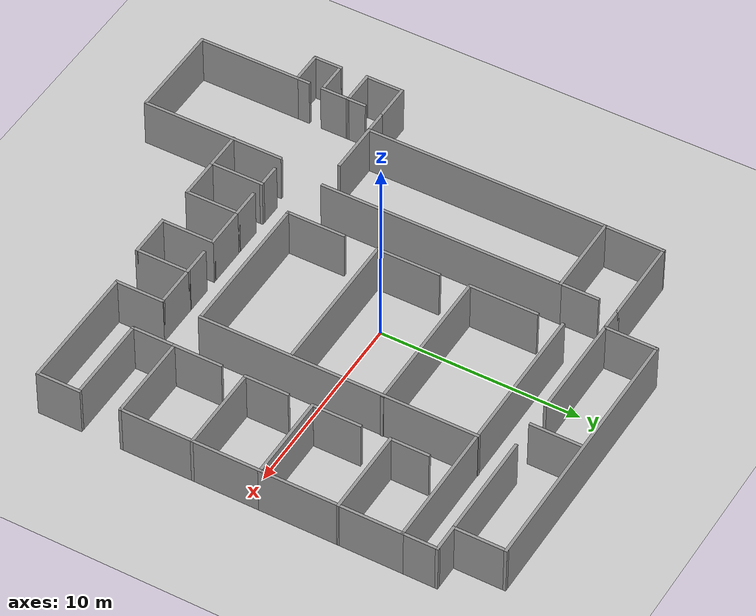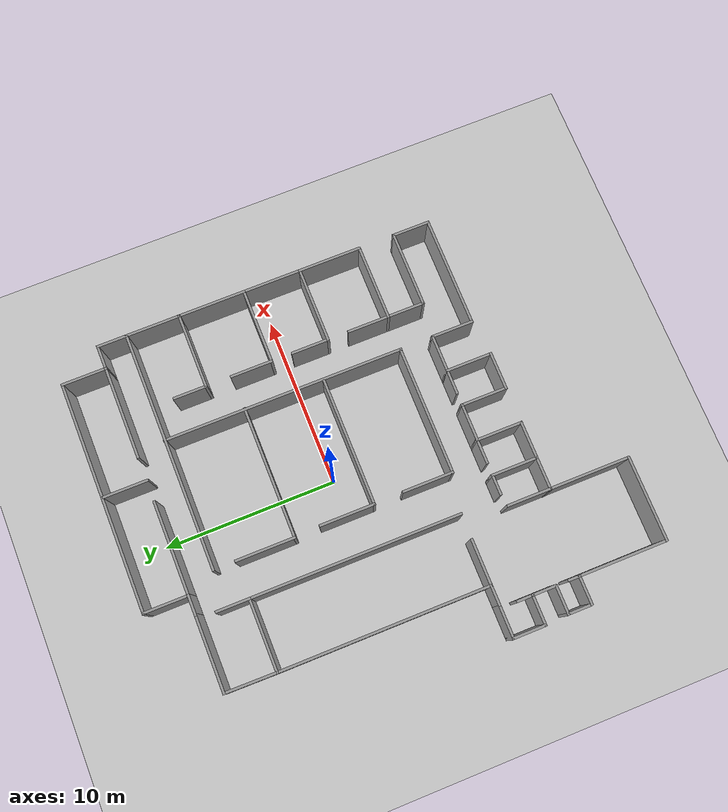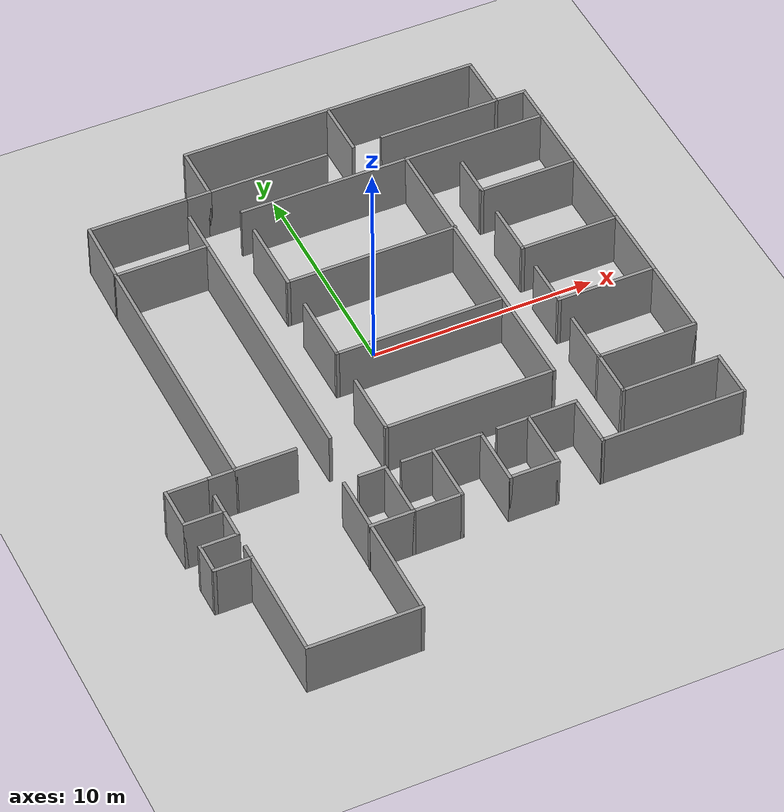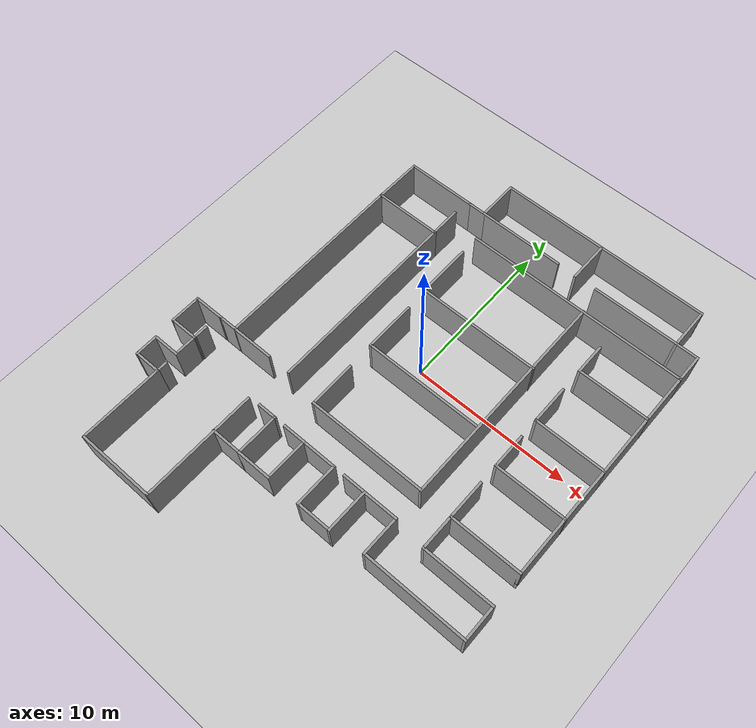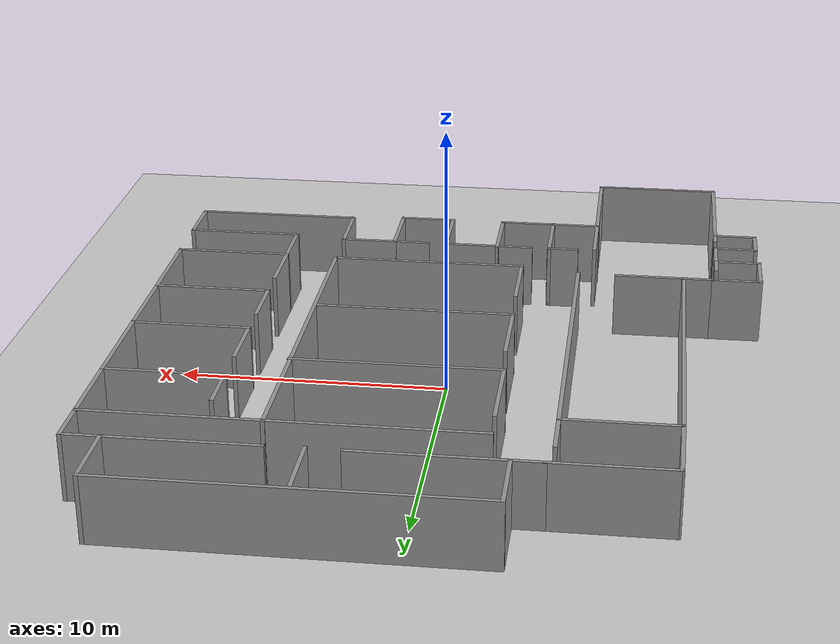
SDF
<sdf version="1.6">
 <world name="default">
  <light name="sun" type="directional">
   <pose>0 0 10 0 -0 0</pose>
   <diffuse>0.8 0.8 0.8 1</diffuse>
   <specular>0.2 0.2 0.2 1</specular>
   <attenuation>
    <range>1000</range>
    <constant>0.9</constant>
    <linear>0.01</linear>
    <quadratic>0.001</quadratic>
   </attenuation>
   <direction>-0.5 0.1 -0.9</direction>
  </light>
  <model name="ground_plane">
   <static>1</static>
   <link name="link">
    <collision name="collision">
     <geometry><plane><normal>0 0 1</normal><size>100 100</size></plane></geometry>
     <surface>
      <contact><collide_bitmask>65535</collide_bitmask></contact>
      <friction><ode><mu>100</mu><mu2>50</mu2></ode></friction>
     </surface>
    </collision>
    <visual name="visual">
     <cast_shadows>0</cast_shadows>
     <geometry><plane><normal>0 0 1</normal><size>100 100</size></plane></geometry>
     <material>
      <script><uri>file://media/materials/scripts/gazebo.material</uri><name>Gazebo/Grey</name></script>
     </material>
    </visual>
   </link>
  </model>
  <gravity>0 0 -9.8</gravity>
  <magnetic_field>6e-06 2.3e-05 -4.2e-05</magnetic_field>
  <atmosphere type="adiabatic"/>
  <physics name="default_physics" default="0" type="ode">
   <max_step_size>0.001</max_step_size>
   <real_time_factor>1</real_time_factor>
   <real_time_update_rate>1000</real_time_update_rate>
  </physics>
  <scene><ambient>0.4 0.4 0.4 1</ambient><background>0.7 0.7 0.7 1</background><shadows>1</shadows></scene>
  <audio><device>default</device></audio>
  <spherical_coordinates>
   <surface_model>EARTH_WGS84</surface_model>
   <latitude_deg>0</latitude_deg>
   <longitude_deg>0</longitude_deg>
   <elevation>0</elevation>
   <heading_deg>0</heading_deg>
  </spherical_coordinates>
  <model name="444.world">
   <pose>-0.029939 -1.64319 0 0 -0 0</pose>
   <link name="Wall_10">
    <collision name="Wall_10_Collision">
     <geometry><box><size>4.9997 0.15 2.5</size></box></geometry>
     <pose>0 0 1.25 0 -0 0</pose>
    </collision>
    <visual name="Wall_10_Visual">
     <pose>0 0 1.25 0 -0 0</pose>
     <geometry><box><size>4.9997 0.15 2.5</size></box></geometry>
     <material>
      <script><uri>file://media/materials/scripts/gazebo.material</uri><name>Gazebo/Grey</name></script>
      <ambient>1 1 1 1</ambient>
     </material>
     <meta><layer>0</layer></meta>
    </visual>
    <pose>-7.44921 -13.5901 0 0 -0 -3e-05</pose>
   </link>
   <link name="Wall_101">
    <collision name="Wall_101_Collision">
     <geometry><box><size>2.5 0.15 2.5</size></box></geometry>
     <pose>0 0 1.25 0 -0 0</pose>
    </collision>
    <visual name="Wall_101_Visual">
     <pose>0 0 1.25 0 -0 0</pose>
     <geometry><box><size>2.5 0.15 2.5</size></box></geometry>
     <material>
      <script><uri>file://media/materials/scripts/gazebo.material</uri><name>Gazebo/Grey</name></script>
      <ambient>1 1 1 1</ambient>
     </material>
     <meta><layer>0</layer></meta>
    </visual>
    <pose>7.20494 -3.33503 0 0 -0 1.5708</pose>
   </link>
   <link name="Wall_104">
    <collision name="Wall_104_Collision">
     <geometry><box><size>1.25 0.15 2.5</size></box></geometry>
     <pose>0 0 1.25 0 -0 0</pose>
    </collision>
    <visual name="Wall_104_Visual">
     <pose>0 0 1.25 0 -0 0</pose>
     <geometry><box><size>1.25 0.15 2.5</size></box></geometry>
     <material>
      <script><uri>file://media/materials/scripts/gazebo.material</uri><name>Gazebo/Grey</name></script>
      <ambient>1 1 1 1</ambient>
     </material>
     <meta><layer>0</layer></meta>
    </visual>
    <pose>-3.74483 -6.35993 0 0 -0 3.14159</pose>
   </link>
   <link name="Wall_106">
    <collision name="Wall_106_Collision">
     <geometry><box><size>1.5 0.15 2.5</size></box></geometry>
     <pose>0 0 1.25 0 -0 0</pose>
    </collision>
    <visual name="Wall_106_Visual">
     <pose>0 0 1.25 0 -0 0</pose>
     <geometry><box><size>1.5 0.15 2.5</size></box></geometry>
     <material>
      <script><uri>file://media/materials/scripts/gazebo.material</uri><name>Gazebo/Grey</name></script>
      <ambient>1 1 1 1</ambient>
     </material>
     <meta><layer>0</layer></meta>
    </visual>
    <pose>-1.76983 -6.35993 0 0 -0 3.14159</pose>
   </link>
   <link name="Wall_108">
    <collision name="Wall_108_Collision">
     <geometry><box><size>1.5 0.15 2.5</size></box></geometry>
     <pose>0 0 1.25 0 -0 0</pose>
    </collision>
    <visual name="Wall_108_Visual">
     <pose>0 0 1.25 0 -0 0</pose>
     <geometry><box><size>1.5 0.15 2.5</size></box></geometry>
     <material>
      <script><uri>file://media/materials/scripts/gazebo.material</uri><name>Gazebo/Grey</name></script>
      <ambient>1 1 1 1</ambient>
     </material>
     <meta><layer>0</layer></meta>
    </visual>
    <pose>2.43017 -6.35993 0 0 -0 3.14159</pose>
   </link>
   <link name="Wall_11">
    <collision name="Wall_11_Collision">
     <geometry><box><size>7.25 0.15 2.5</size></box></geometry>
     <pose>0 0 1.25 0 -0 0</pose>
    </collision>
    <visual name="Wall_11_Visual">
     <pose>0 0 1.25 0 -0 0</pose>
     <geometry><box><size>7.25 0.15 2.5</size></box></geometry>
     <material>
      <script><uri>file://media/materials/scripts/gazebo.material</uri><name>Gazebo/Grey</name></script>
      <ambient>1 1 1 1</ambient>
     </material>
     <meta><layer>0</layer></meta>
    </visual>
    <pose>-5.02436 -10.0402 0 0 -0 1.5708</pose>
   </link>
   <link name="Wall_110">
    <collision name="Wall_110_Collision">
     <geometry><box><size>1 0.15 2.5</size></box></geometry>
     <pose>0 0 1.25 0 -0 0</pose>
    </collision>
    <visual name="Wall_110_Visual">
     <pose>0 0 1.25 0 -0 0</pose>
     <geometry><box><size>1 0.15 2.5</size></box></geometry>
     <material>
      <script><uri>file://media/materials/scripts/gazebo.material</uri><name>Gazebo/Grey</name></script>
      <ambient>1 1 1 1</ambient>
     </material>
     <meta><layer>0</layer></meta>
    </visual>
    <pose>-9.87421 -5.3651 0 0 -0 1.57115</pose>
   </link>
   <link name="Wall_113">
    <collision name="Wall_113_Collision">
     <geometry><box><size>0.75 0.15 2.5</size></box></geometry>
     <pose>0 0 1.25 0 -0 0</pose>
    </collision>
    <visual name="Wall_113_Visual">
     <pose>0 0 1.25 0 -0 0</pose>
     <geometry><box><size>0.75 0.15 2.5</size></box></geometry>
     <material>
      <script><uri>file://media/materials/scripts/gazebo.material</uri><name>Gazebo/Grey</name></script>
      <ambient>1 1 1 1</ambient>
     </material>
     <meta><layer>0</layer></meta>
    </visual>
    <pose>-9.87406 -8.19003 0 0 -0 1.5708</pose>
   </link>
   <link name="Wall_13">
    <collision name="Wall_13_Collision">
     <geometry><box><size>2 0.15 2.5</size></box></geometry>
     <pose>0 0 1.25 0 -0 0</pose>
    </collision>
    <visual name="Wall_13_Visual">
     <pose>0 0 1.25 0 -0 0</pose>
     <geometry><box><size>2 0.15 2.5</size></box></geometry>
     <material>
      <script><uri>file://media/materials/scripts/gazebo.material</uri><name>Gazebo/Grey</name></script>
      <ambient>1 1 1 1</ambient>
     </material>
     <meta><layer>0</layer></meta>
    </visual>
    <pose>-4.11983 -8.95993 0 0 -0 0</pose>
   </link>
   <link name="Wall_14">
    <collision name="Wall_14_Collision">
     <geometry><box><size>2.75 0.15 2.5</size></box></geometry>
     <pose>0 0 1.25 0 -0 0</pose>
    </collision>
    <visual name="Wall_14_Visual">
     <pose>0 0 1.25 0 -0 0</pose>
     <geometry><box><size>2.75 0.15 2.5</size></box></geometry>
     <material>
      <script><uri>file://media/materials/scripts/gazebo.material</uri><name>Gazebo/Grey</name></script>
      <ambient>1 1 1 1</ambient>
     </material>
     <meta><layer>0</layer></meta>
    </visual>
    <pose>-3.19483 -7.65993 0 0 -0 1.5708</pose>
   </link>
   <link name="Wall_16">
    <collision name="Wall_16_Collision">
     <geometry><box><size>2.25 0.15 2.5</size></box></geometry>
     <pose>0 0 1.25 0 -0 0</pose>
    </collision>
    <visual name="Wall_16_Visual">
     <pose>0 0 1.25 0 -0 0</pose>
     <geometry><box><size>2.25 0.15 2.5</size></box></geometry>
     <material>
      <script><uri>file://media/materials/scripts/gazebo.material</uri><name>Gazebo/Grey</name></script>
      <ambient>1 1 1 1</ambient>
     </material>
     <meta><layer>0</layer></meta>
    </visual>
    <pose>-2.14483 -8.95993 0 0 -0 0</pose>
   </link>
   <link name="Wall_17">
    <collision name="Wall_17_Collision">
     <geometry><box><size>2.75 0.15 2.5</size></box></geometry>
     <pose>0 0 1.25 0 -0 0</pose>
    </collision>
    <visual name="Wall_17_Visual">
     <pose>0 0 1.25 0 -0 0</pose>
     <geometry><box><size>2.75 0.15 2.5</size></box></geometry>
     <material>
      <script><uri>file://media/materials/scripts/gazebo.material</uri><name>Gazebo/Grey</name></script>
      <ambient>1 1 1 1</ambient>
     </material>
     <meta><layer>0</layer></meta>
    </visual>
    <pose>-1.09483 -7.65993 0 0 -0 1.5708</pose>
   </link>
   <link name="Wall_18">
    <collision name="Wall_18_Collision">
     <geometry><box><size>2.25 0.15 2.5</size></box></geometry>
     <pose>0 0 1.25 0 -0 0</pose>
    </collision>
    <visual name="Wall_18_Visual">
     <pose>0 0 1.25 0 -0 0</pose>
     <geometry><box><size>2.25 0.15 2.5</size></box></geometry>
     <material>
      <script><uri>file://media/materials/scripts/gazebo.material</uri><name>Gazebo/Grey</name></script>
      <ambient>1 1 1 1</ambient>
     </material>
     <meta><layer>0</layer></meta>
    </visual>
    <pose>-0.044833 -6.35993 0 0 -0 0</pose>
   </link>
   <link name="Wall_19">
    <collision name="Wall_19_Collision">
     <geometry><box><size>2.75 0.15 2.5</size></box></geometry>
     <pose>0 0 1.25 0 -0 0</pose>
    </collision>
    <visual name="Wall_19_Visual">
     <pose>0 0 1.25 0 -0 0</pose>
     <geometry><box><size>2.75 0.15 2.5</size></box></geometry>
     <material>
      <script><uri>file://media/materials/scripts/gazebo.material</uri><name>Gazebo/Grey</name></script>
      <ambient>1 1 1 1</ambient>
     </material>
     <meta><layer>0</layer></meta>
    </visual>
    <pose>1.00517 -7.65993 0 0 -0 -1.5708</pose>
   </link>
   <link name="Wall_20">
    <collision name="Wall_20_Collision">
     <geometry><box><size>2.25 0.15 2.5</size></box></geometry>
     <pose>0 0 1.25 0 -0 0</pose>
    </collision>
    <visual name="Wall_20_Visual">
     <pose>0 0 1.25 0 -0 0</pose>
     <geometry><box><size>2.25 0.15 2.5</size></box></geometry>
     <material>
      <script><uri>file://media/materials/scripts/gazebo.material</uri><name>Gazebo/Grey</name></script>
      <ambient>1 1 1 1</ambient>
     </material>
     <meta><layer>0</layer></meta>
    </visual>
    <pose>2.05517 -8.95993 0 0 -0 0</pose>
   </link>
   <link name="Wall_21">
    <collision name="Wall_21_Collision">
     <geometry><box><size>2.75 0.15 2.5</size></box></geometry>
     <pose>0 0 1.25 0 -0 0</pose>
    </collision>
    <visual name="Wall_21_Visual">
     <pose>0 0 1.25 0 -0 0</pose>
     <geometry><box><size>2.75 0.15 2.5</size></box></geometry>
     <material>
      <script><uri>file://media/materials/scripts/gazebo.material</uri><name>Gazebo/Grey</name></script>
      <ambient>1 1 1 1</ambient>
     </material>
     <meta><layer>0</layer></meta>
    </visual>
    <pose>3.10517 -7.65993 0 0 -0 1.5708</pose>
   </link>
   <link name="Wall_22">
    <collision name="Wall_22_Collision">
     <geometry><box><size>2.25 0.15 2.5</size></box></geometry>
     <pose>0 0 1.25 0 -0 0</pose>
    </collision>
    <visual name="Wall_22_Visual">
     <pose>0 0 1.25 0 -0 0</pose>
     <geometry><box><size>2.25 0.15 2.5</size></box></geometry>
     <material>
      <script><uri>file://media/materials/scripts/gazebo.material</uri><name>Gazebo/Grey</name></script>
      <ambient>1 1 1 1</ambient>
     </material>
     <meta><layer>0</layer></meta>
    </visual>
    <pose>4.15517 -6.35993 0 0 -0 0</pose>
   </link>
   <link name="Wall_23">
    <collision name="Wall_23_Collision">
     <geometry><box><size>2.5 0.15 2.5</size></box></geometry>
     <pose>0 0 1.25 0 -0 0</pose>
    </collision>
    <visual name="Wall_23_Visual">
     <pose>0 0 1.25 0 -0 0</pose>
     <geometry><box><size>2.5 0.15 2.5</size></box></geometry>
     <material>
      <script><uri>file://media/materials/scripts/gazebo.material</uri><name>Gazebo/Grey</name></script>
      <ambient>1 1 1 1</ambient>
     </material>
     <meta><layer>0</layer></meta>
    </visual>
    <pose>5.20517 -7.53493 0 0 -0 -1.5708</pose>
   </link>
   <link name="Wall_24">
    <collision name="Wall_24_Collision">
     <geometry><box><size>6.5 0.15 2.5</size></box></geometry>
     <pose>0 0 1.25 0 -0 0</pose>
    </collision>
    <visual name="Wall_24_Visual">
     <pose>0 0 1.25 0 -0 0</pose>
     <geometry><box><size>6.5 0.15 2.5</size></box></geometry>
     <material>
      <script><uri>file://media/materials/scripts/gazebo.material</uri><name>Gazebo/Grey</name></script>
      <ambient>1 1 1 1</ambient>
     </material>
     <meta><layer>0</layer></meta>
    </visual>
    <pose>8.38017 -8.70993 0 0 -0 0</pose>
   </link>
   <link name="Wall_25">
    <collision name="Wall_25_Collision">
     <geometry><box><size>2.25 0.15 2.5</size></box></geometry>
     <pose>0 0 1.25 0 -0 0</pose>
    </collision>
    <visual name="Wall_25_Visual">
     <pose>0 0 1.25 0 -0 0</pose>
     <geometry><box><size>2.25 0.15 2.5</size></box></geometry>
     <material>
      <script><uri>file://media/materials/scripts/gazebo.material</uri><name>Gazebo/Grey</name></script>
      <ambient>1 1 1 1</ambient>
     </material>
     <meta><layer>0</layer></meta>
    </visual>
    <pose>11.5551 -7.65998 0 0 -0 1.5709</pose>
   </link>
   <link name="Wall_26">
    <collision name="Wall_26_Collision">
     <geometry><box><size>4.5 0.15 2.5</size></box></geometry>
     <pose>0 0 1.25 0 -0 0</pose>
    </collision>
    <visual name="Wall_26_Visual">
     <pose>0 0 1.25 0 -0 0</pose>
     <geometry><box><size>4.5 0.15 2.5</size></box></geometry>
     <material>
      <script><uri>file://media/materials/scripts/gazebo.material</uri><name>Gazebo/Grey</name></script>
      <ambient>1 1 1 1</ambient>
     </material>
     <meta><layer>0</layer></meta>
    </visual>
    <pose>9.37994 -6.61003 0 0 -0 3.14159</pose>
   </link>
   <link name="Wall_27">
    <collision name="Wall_27_Collision">
     <geometry><box><size>2.25 0.15 2.5</size></box></geometry>
     <pose>0 0 1.25 0 -0 0</pose>
    </collision>
    <visual name="Wall_27_Visual">
     <pose>0 0 1.25 0 -0 0</pose>
     <geometry><box><size>2.25 0.15 2.5</size></box></geometry>
     <material>
      <script><uri>file://media/materials/scripts/gazebo.material</uri><name>Gazebo/Grey</name></script>
      <ambient>1 1 1 1</ambient>
     </material>
     <meta><layer>0</layer></meta>
    </visual>
    <pose>7.20494 -5.56003 0 0 -0 1.5708</pose>
   </link>
   <link name="Wall_28">
    <collision name="Wall_28_Collision">
     <geometry><box><size>4.50023 0.15 2.5</size></box></geometry>
     <pose>0 0 1.25 0 -0 0</pose>
    </collision>
    <visual name="Wall_28_Visual">
     <pose>0 0 1.25 0 -0 0</pose>
     <geometry><box><size>4.50023 0.15 2.5</size></box></geometry>
     <material>
      <script><uri>file://media/materials/scripts/gazebo.material</uri><name>Gazebo/Grey</name></script>
      <ambient>1 1 1 1</ambient>
     </material>
     <meta><layer>0</layer></meta>
    </visual>
    <pose>9.37994 -4.51003 0 0 -0 0</pose>
   </link>
   <link name="Wall_29">
    <collision name="Wall_29_Collision">
     <geometry><box><size>3.75 0.15 2.5</size></box></geometry>
     <pose>0 0 1.25 0 -0 0</pose>
    </collision>
    <visual name="Wall_29_Visual">
     <pose>0 0 1.25 0 -0 0</pose>
     <geometry><box><size>3.75 0.15 2.5</size></box></geometry>
     <material>
      <script><uri>file://media/materials/scripts/gazebo.material</uri><name>Gazebo/Grey</name></script>
      <ambient>1 1 1 1</ambient>
     </material>
     <meta><layer>0</layer></meta>
    </visual>
    <pose>11.5549 -2.71003 0 0 -0 1.5708</pose>
   </link>
   <link name="Wall_30">
    <collision name="Wall_30_Collision">
     <geometry><box><size>4.5 0.15 2.5</size></box></geometry>
     <pose>0 0 1.25 0 -0 0</pose>
    </collision>
    <visual name="Wall_30_Visual">
     <pose>0 0 1.25 0 -0 0</pose>
     <geometry><box><size>4.5 0.15 2.5</size></box></geometry>
     <material>
      <script><uri>file://media/materials/scripts/gazebo.material</uri><name>Gazebo/Grey</name></script>
      <ambient>1 1 1 1</ambient>
     </material>
     <meta><layer>0</layer></meta>
    </visual>
    <pose>9.37994 -0.910033 0 0 -0 3.14159</pose>
   </link>
   <link name="Wall_32">
    <collision name="Wall_32_Collision">
     <geometry><box><size>3.5 0.15 2.5</size></box></geometry>
     <pose>0 0 1.25 0 -0 0</pose>
    </collision>
    <visual name="Wall_32_Visual">
     <pose>0 0 1.25 0 -0 0</pose>
     <geometry><box><size>3.5 0.15 2.5</size></box></geometry>
     <material>
      <script><uri>file://media/materials/scripts/gazebo.material</uri><name>Gazebo/Grey</name></script>
      <ambient>1 1 1 1</ambient>
     </material>
     <meta><layer>0</layer></meta>
    </visual>
    <pose>11.5549 0.764968 0 0 -0 1.5708</pose>
   </link>
   <link name="Wall_33">
    <collision name="Wall_33_Collision">
     <geometry><box><size>4.5 0.15 2.5</size></box></geometry>
     <pose>0 0 1.25 0 -0 0</pose>
    </collision>
    <visual name="Wall_33_Visual">
     <pose>0 0 1.25 0 -0 0</pose>
     <geometry><box><size>4.5 0.15 2.5</size></box></geometry>
     <material>
      <script><uri>file://media/materials/scripts/gazebo.material</uri><name>Gazebo/Grey</name></script>
      <ambient>1 1 1 1</ambient>
     </material>
     <meta><layer>0</layer></meta>
    </visual>
    <pose>9.37994 2.43997 0 0 -0 3.14159</pose>
   </link>
   <link name="Wall_35">
    <collision name="Wall_35_Collision">
     <geometry><box><size>4 0.15 2.5</size></box></geometry>
     <pose>0 0 1.25 0 -0 0</pose>
    </collision>
    <visual name="Wall_35_Visual">
     <pose>0 0 1.25 0 -0 0</pose>
     <geometry><box><size>4 0.15 2.5</size></box></geometry>
     <material>
      <script><uri>file://media/materials/scripts/gazebo.material</uri><name>Gazebo/Grey</name></script>
      <ambient>1 1 1 1</ambient>
     </material>
     <meta><layer>0</layer></meta>
    </visual>
    <pose>11.5551 4.36502 0 0 -0 1.57074</pose>
   </link>
   <link name="Wall_36">
    <collision name="Wall_36_Collision">
     <geometry><box><size>4.5 0.15 2.5</size></box></geometry>
     <pose>0 0 1.25 0 -0 0</pose>
    </collision>
    <visual name="Wall_36_Visual">
     <pose>0 0 1.25 0 -0 0</pose>
     <geometry><box><size>4.5 0.15 2.5</size></box></geometry>
     <material>
      <script><uri>file://media/materials/scripts/gazebo.material</uri><name>Gazebo/Grey</name></script>
      <ambient>1 1 1 1</ambient>
     </material>
     <meta><layer>0</layer></meta>
    </visual>
    <pose>9.38017 6.29007 0 0 -0 3.14159</pose>
   </link>
   <link name="Wall_38">
    <collision name="Wall_38_Collision">
     <geometry><box><size>3.25 0.15 2.5</size></box></geometry>
     <pose>0 0 1.25 0 -0 0</pose>
    </collision>
    <visual name="Wall_38_Visual">
     <pose>0 0 1.25 0 -0 0</pose>
     <geometry><box><size>3.25 0.15 2.5</size></box></geometry>
     <material>
      <script><uri>file://media/materials/scripts/gazebo.material</uri><name>Gazebo/Grey</name></script>
      <ambient>1 1 1 1</ambient>
     </material>
     <meta><layer>0</layer></meta>
    </visual>
    <pose>11.5551 7.84002 0 0 -0 1.57087</pose>
   </link>
   <link name="Wall_4">
    <collision name="Wall_4_Collision">
     <geometry><box><size>1.8307 0.15 2.5</size></box></geometry>
     <pose>0 0 1.25 0 -0 0</pose>
    </collision>
    <visual name="Wall_4_Visual">
     <pose>0 0 1.25 0 -0 0</pose>
     <geometry><box><size>1.8307 0.15 2.5</size></box></geometry>
     <material>
      <script><uri>file://media/materials/scripts/gazebo.material</uri><name>Gazebo/Grey</name></script>
      <ambient>1 1 1 1</ambient>
     </material>
     <meta><layer>0</layer></meta>
    </visual>
    <pose>-10.7146 -5.79003 0 0 -0 0</pose>
   </link>
   <link name="Wall_41">
    <collision name="Wall_41_Collision">
     <geometry><box><size>1.83148 0.15 2.5</size></box></geometry>
     <pose>0 0 1.25 0 -0 0</pose>
    </collision>
    <visual name="Wall_41_Visual">
     <pose>0 0 1.25 0 -0 0</pose>
     <geometry><box><size>1.83148 0.15 2.5</size></box></geometry>
     <material>
      <script><uri>file://media/materials/scripts/gazebo.material</uri><name>Gazebo/Grey</name></script>
      <ambient>1 1 1 1</ambient>
     </material>
     <meta><layer>0</layer></meta>
    </visual>
    <pose>11.5549 10.2305 0 0 -0 1.5708</pose>
   </link>
   <link name="Wall_42">
    <collision name="Wall_42_Collision">
     <geometry><box><size>1.5 0.15 2.5</size></box></geometry>
     <pose>0 0 1.25 0 -0 0</pose>
    </collision>
    <visual name="Wall_42_Visual">
     <pose>0 0 1.25 0 -0 0</pose>
     <geometry><box><size>1.5 0.15 2.5</size></box></geometry>
     <material>
      <script><uri>file://media/materials/scripts/gazebo.material</uri><name>Gazebo/Grey</name></script>
      <ambient>1 1 1 1</ambient>
     </material>
     <meta><layer>0</layer></meta>
    </visual>
    <pose>10.8799 11.071 0 0 -0 3.14159</pose>
   </link>
   <link name="Wall_43">
    <collision name="Wall_43_Collision">
     <geometry><box><size>2.66942 0.15 2.5</size></box></geometry>
     <pose>0 0 1.25 0 -0 0</pose>
    </collision>
    <visual name="Wall_43_Visual">
     <pose>0 0 1.25 0 -0 0</pose>
     <geometry><box><size>2.66942 0.15 2.5</size></box></geometry>
     <material>
      <script><uri>file://media/materials/scripts/gazebo.material</uri><name>Gazebo/Grey</name></script>
      <ambient>1 1 1 1</ambient>
     </material>
     <meta><layer>0</layer></meta>
    </visual>
    <pose>10.2049 12.3305 0 0 -0 1.5708</pose>
   </link>
   <link name="Wall_44">
    <collision name="Wall_44_Collision">
     <geometry><box><size>13.5 0.15 2.5</size></box></geometry>
     <pose>0 0 1.25 0 -0 0</pose>
    </collision>
    <visual name="Wall_44_Visual">
     <pose>0 0 1.25 0 -0 0</pose>
     <geometry><box><size>13.5 0.15 2.5</size></box></geometry>
     <material>
      <script><uri>file://media/materials/scripts/gazebo.material</uri><name>Gazebo/Grey</name></script>
      <ambient>1 1 1 1</ambient>
     </material>
     <meta><layer>0</layer></meta>
    </visual>
    <pose>3.52994 13.59 0 0 -0 3.14159</pose>
   </link>
   <link name="Wall_45">
    <collision name="Wall_45_Collision">
     <geometry><box><size>2.669 0.15 2.5</size></box></geometry>
     <pose>0 0 1.25 0 -0 0</pose>
    </collision>
    <visual name="Wall_45_Visual">
     <pose>0 0 1.25 0 -0 0</pose>
     <geometry><box><size>2.669 0.15 2.5</size></box></geometry>
     <material>
      <script><uri>file://media/materials/scripts/gazebo.material</uri><name>Gazebo/Grey</name></script>
      <ambient>1 1 1 1</ambient>
     </material>
     <meta><layer>0</layer></meta>
    </visual>
    <pose>-3.14506 12.3305 0 0 -0 -1.5708</pose>
   </link>
   <link name="Wall_46">
    <collision name="Wall_46_Collision">
     <geometry><box><size>1.25052 0.15 2.5</size></box></geometry>
     <pose>0 0 1.25 0 -0 0</pose>
    </collision>
    <visual name="Wall_46_Visual">
     <pose>0 0 1.25 0 -0 0</pose>
     <geometry><box><size>1.25052 0.15 2.5</size></box></geometry>
     <material>
      <script><uri>file://media/materials/scripts/gazebo.material</uri><name>Gazebo/Grey</name></script>
      <ambient>1 1 1 1</ambient>
     </material>
     <meta><layer>0</layer></meta>
    </visual>
    <pose>-3.69506 11.071 0 0 -0 3.14159</pose>
   </link>
   <link name="Wall_47">
    <collision name="Wall_47_Collision">
     <geometry><box><size>4.45951 0.15 2.5</size></box></geometry>
     <pose>0 0 1.25 0 -0 0</pose>
    </collision>
    <visual name="Wall_47_Visual">
     <pose>0 0 1.25 0 -0 0</pose>
     <geometry><box><size>4.45951 0.15 2.5</size></box></geometry>
     <material>
      <script><uri>file://media/materials/scripts/gazebo.material</uri><name>Gazebo/Grey</name></script>
      <ambient>1 1 1 1</ambient>
     </material>
     <meta><layer>0</layer></meta>
    </visual>
    <pose>-6.39956 11.071 0 0 -0 3.14159</pose>
   </link>
   <link name="Wall_48">
    <collision name="Wall_48_Collision">
     <geometry><box><size>3.08118 0.15 2.5</size></box></geometry>
     <pose>0 0 1.25 0 -0 0</pose>
    </collision>
    <visual name="Wall_48_Visual">
     <pose>0 0 1.25 0 -0 0</pose>
     <geometry><box><size>3.08118 0.15 2.5</size></box></geometry>
     <material>
      <script><uri>file://media/materials/scripts/gazebo.material</uri><name>Gazebo/Grey</name></script>
      <ambient>1 1 1 1</ambient>
     </material>
     <meta><layer>0</layer></meta>
    </visual>
    <pose>-8.57445 9.60552 0 0 -0 -1.58471</pose>
   </link>
   <link name="Wall_49">
    <collision name="Wall_49_Collision">
     <geometry><box><size>4.25 0.15 2.5</size></box></geometry>
     <pose>0 0 1.25 0 -0 0</pose>
    </collision>
    <visual name="Wall_49_Visual">
     <pose>0 0 1.25 0 -0 0</pose>
     <geometry><box><size>4.25 0.15 2.5</size></box></geometry>
     <material>
      <script><uri>file://media/materials/scripts/gazebo.material</uri><name>Gazebo/Grey</name></script>
      <ambient>1 1 1 1</ambient>
     </material>
     <meta><layer>0</layer></meta>
    </visual>
    <pose>-6.54483 8.14007 0 0 -0 0</pose>
   </link>
   <link name="Wall_5">
    <collision name="Wall_5_Collision">
     <geometry><box><size>1.5 0.15 2.5</size></box></geometry>
     <pose>0 0 1.25 0 -0 0</pose>
    </collision>
    <visual name="Wall_5_Visual">
     <pose>0 0 1.25 0 -0 0</pose>
     <geometry><box><size>1.5 0.15 2.5</size></box></geometry>
     <material>
      <script><uri>file://media/materials/scripts/gazebo.material</uri><name>Gazebo/Grey</name></script>
      <ambient>1 1 1 1</ambient>
     </material>
     <meta><layer>0</layer></meta>
    </visual>
    <pose>-9.87421 -6.46511 0 0 -0 -1.57102</pose>
   </link>
   <link name="Wall_51">
    <collision name="Wall_51_Collision">
     <geometry><box><size>12.25 0.15 2.5</size></box></geometry>
     <pose>0 0 1.25 0 -0 0</pose>
    </collision>
    <visual name="Wall_51_Visual">
     <pose>0 0 1.25 0 -0 0</pose>
     <geometry><box><size>12.25 0.15 2.5</size></box></geometry>
     <material>
      <script><uri>file://media/materials/scripts/gazebo.material</uri><name>Gazebo/Grey</name></script>
      <ambient>1 1 1 1</ambient>
     </material>
     <meta><layer>0</layer></meta>
    </visual>
    <pose>-4.49483 2.09007 0 0 -0 -1.5708</pose>
   </link>
   <link name="Wall_53">
    <collision name="Wall_53_Collision">
     <geometry><box><size>12.25 0.15 2.5</size></box></geometry>
     <pose>0 0 1.25 0 -0 0</pose>
    </collision>
    <visual name="Wall_53_Visual">
     <pose>0 0 1.25 0 -0 0</pose>
     <geometry><box><size>12.25 0.15 2.5</size></box></geometry>
     <material>
      <script><uri>file://media/materials/scripts/gazebo.material</uri><name>Gazebo/Grey</name></script>
      <ambient>1 1 1 1</ambient>
     </material>
     <meta><layer>0</layer></meta>
    </visual>
    <pose>-8.59483 2.09007 0 0 -0 -1.5708</pose>
   </link>
   <link name="Wall_54">
    <collision name="Wall_54_Collision">
     <geometry><box><size>2.75 0.15 2.5</size></box></geometry>
     <pose>0 0 1.25 0 -0 0</pose>
    </collision>
    <visual name="Wall_54_Visual">
     <pose>0 0 1.25 0 -0 0</pose>
     <geometry><box><size>2.75 0.15 2.5</size></box></geometry>
     <material>
      <script><uri>file://media/materials/scripts/gazebo.material</uri><name>Gazebo/Grey</name></script>
      <ambient>1 1 1 1</ambient>
     </material>
     <meta><layer>0</layer></meta>
    </visual>
    <pose>-7.29483 -3.95993 0 0 -0 0</pose>
   </link>
   <link name="Wall_56">
    <collision name="Wall_56_Collision">
     <geometry><box><size>1.25 0.15 2.5</size></box></geometry>
     <pose>0 0 1.25 0 -0 0</pose>
    </collision>
    <visual name="Wall_56_Visual">
     <pose>0 0 1.25 0 -0 0</pose>
     <geometry><box><size>1.25 0.15 2.5</size></box></geometry>
     <material>
      <script><uri>file://media/materials/scripts/gazebo.material</uri><name>Gazebo/Grey</name></script>
      <ambient>1 1 1 1</ambient>
     </material>
     <meta><layer>0</layer></meta>
    </visual>
    <pose>-9.14495 -3.95998 0 0 -0 9.2e-05</pose>
   </link>
   <link name="Wall_58">
    <collision name="Wall_58_Collision">
     <geometry><box><size>2.624 0.15 2.5</size></box></geometry>
     <pose>0 0 1.25 0 -0 0</pose>
    </collision>
    <visual name="Wall_58_Visual">
     <pose>0 0 1.25 0 -0 0</pose>
     <geometry><box><size>2.624 0.15 2.5</size></box></geometry>
     <material>
      <script><uri>file://media/materials/scripts/gazebo.material</uri><name>Gazebo/Grey</name></script>
      <ambient>1 1 1 1</ambient>
     </material>
     <meta><layer>0</layer></meta>
    </visual>
    <pose>3.4624 12.2728 0 0 -0 -1.5708</pose>
   </link>
   <link name="Wall_6">
    <collision name="Wall_6_Collision">
     <geometry><box><size>1.75 0.15 2.5</size></box></geometry>
     <pose>0 0 1.25 0 -0 0</pose>
    </collision>
    <visual name="Wall_6_Visual">
     <pose>0 0 1.25 0 -0 0</pose>
     <geometry><box><size>1.75 0.15 2.5</size></box></geometry>
     <material>
      <script><uri>file://media/materials/scripts/gazebo.material</uri><name>Gazebo/Grey</name></script>
      <ambient>1 1 1 1</ambient>
     </material>
     <meta><layer>0</layer></meta>
    </visual>
    <pose>-10.6744 -7.14018 0 0 -0 3.14159</pose>
   </link>
   <link name="Wall_63">
    <collision name="Wall_63_Collision">
     <geometry><box><size>5.5 0.15 2.5</size></box></geometry>
     <pose>0 0 1.25 0 -0 0</pose>
    </collision>
    <visual name="Wall_63_Visual">
     <pose>0 0 1.25 0 -0 0</pose>
     <geometry><box><size>5.5 0.15 2.5</size></box></geometry>
     <material>
      <script><uri>file://media/materials/scripts/gazebo.material</uri><name>Gazebo/Grey</name></script>
      <ambient>1 1 1 1</ambient>
     </material>
     <meta><layer>0</layer></meta>
    </visual>
    <pose>-0.470061 11.071 0 0 -0 0</pose>
   </link>
   <link name="Wall_65">
    <collision name="Wall_65_Collision">
     <geometry><box><size>5.5 0.15 2.5</size></box></geometry>
     <pose>0 0 1.25 0 -0 0</pose>
    </collision>
    <visual name="Wall_65_Visual">
     <pose>0 0 1.25 0 -0 0</pose>
     <geometry><box><size>5.5 0.15 2.5</size></box></geometry>
     <material>
      <script><uri>file://media/materials/scripts/gazebo.material</uri><name>Gazebo/Grey</name></script>
      <ambient>1 1 1 1</ambient>
     </material>
     <meta><layer>0</layer></meta>
    </visual>
    <pose>7.52994 11.071 0 0 -0 3.14159</pose>
   </link>
   <link name="Wall_67">
    <collision name="Wall_67_Collision">
     <geometry><box><size>14.078 0.15 2.5</size></box></geometry>
     <pose>0 0 1.25 0 -0 0</pose>
    </collision>
    <visual name="Wall_67_Visual">
     <pose>0 0 1.25 0 -0 0</pose>
     <geometry><box><size>14.078 0.15 2.5</size></box></geometry>
     <material>
      <script><uri>file://media/materials/scripts/gazebo.material</uri><name>Gazebo/Grey</name></script>
      <ambient>1 1 1 1</ambient>
     </material>
     <meta><layer>0</layer></meta>
    </visual>
    <pose>4.59094 9.38997 0 0 -0 3.14159</pose>
   </link>
   <link name="Wall_7">
    <collision name="Wall_7_Collision">
     <geometry><box><size>1.5 0.15 2.5</size></box></geometry>
     <pose>0 0 1.25 0 -0 0</pose>
    </collision>
    <visual name="Wall_7_Visual">
     <pose>0 0 1.25 0 -0 0</pose>
     <geometry><box><size>1.5 0.15 2.5</size></box></geometry>
     <material>
      <script><uri>file://media/materials/scripts/gazebo.material</uri><name>Gazebo/Grey</name></script>
      <ambient>1 1 1 1</ambient>
     </material>
     <meta><layer>0</layer></meta>
    </visual>
    <pose>-11.4742 -7.8151 0 0 -0 -1.57057</pose>
   </link>
   <link name="Wall_70">
    <collision name="Wall_70_Collision">
     <geometry><box><size>14 0.15 2.5</size></box></geometry>
     <pose>0 0 1.25 0 -0 0</pose>
    </collision>
    <visual name="Wall_70_Visual">
     <pose>0 0 1.25 0 -0 0</pose>
     <geometry><box><size>14 0.15 2.5</size></box></geometry>
     <material>
      <script><uri>file://media/materials/scripts/gazebo.material</uri><name>Gazebo/Grey</name></script>
      <ambient>1 1 1 1</ambient>
     </material>
     <meta><layer>0</layer></meta>
    </visual>
    <pose>5.18594 2.49297 0 0 -0 -1.5708</pose>
   </link>
   <link name="Wall_73">
    <collision name="Wall_73_Collision">
     <geometry><box><size>7.75 0.15 2.5</size></box></geometry>
     <pose>0 0 1.25 0 -0 0</pose>
    </collision>
    <visual name="Wall_73_Visual">
     <pose>0 0 1.25 0 -0 0</pose>
     <geometry><box><size>7.75 0.15 2.5</size></box></geometry>
     <material>
      <script><uri>file://media/materials/scripts/gazebo.material</uri><name>Gazebo/Grey</name></script>
      <ambient>1 1 1 1</ambient>
     </material>
     <meta><layer>0</layer></meta>
    </visual>
    <pose>1.42638 4.76564 0 0 -0 3.14159</pose>
   </link>
   <link name="Wall_75">
    <collision name="Wall_75_Collision">
     <geometry><box><size>7.5 0.15 2.5</size></box></geometry>
     <pose>0 0 1.25 0 -0 0</pose>
    </collision>
    <visual name="Wall_75_Visual">
     <pose>0 0 1.25 0 -0 0</pose>
     <geometry><box><size>7.5 0.15 2.5</size></box></geometry>
     <material>
      <script><uri>file://media/materials/scripts/gazebo.material</uri><name>Gazebo/Grey</name></script>
      <ambient>1 1 1 1</ambient>
     </material>
     <meta><layer>0</layer></meta>
    </visual>
    <pose>1.38956 0.153708 0 0 -0 3.14159</pose>
   </link>
   <link name="Wall_77">
    <collision name="Wall_77_Collision">
     <geometry><box><size>7.5 0.15 2.5</size></box></geometry>
     <pose>0 0 1.25 0 -0 0</pose>
    </collision>
    <visual name="Wall_77_Visual">
     <pose>0 0 1.25 0 -0 0</pose>
     <geometry><box><size>7.5 0.15 2.5</size></box></geometry>
     <material>
      <script><uri>file://media/materials/scripts/gazebo.material</uri><name>Gazebo/Grey</name></script>
      <ambient>1 1 1 1</ambient>
     </material>
     <meta><layer>0</layer></meta>
    </visual>
    <pose>1.43002 -4.41777 0 0 -0 3.14159</pose>
   </link>
   <link name="Wall_8">
    <collision name="Wall_8_Collision">
     <geometry><box><size>1.75 0.15 2.5</size></box></geometry>
     <pose>0 0 1.25 0 -0 0</pose>
    </collision>
    <visual name="Wall_8_Visual">
     <pose>0 0 1.25 0 -0 0</pose>
     <geometry><box><size>1.75 0.15 2.5</size></box></geometry>
     <material>
      <script><uri>file://media/materials/scripts/gazebo.material</uri><name>Gazebo/Grey</name></script>
      <ambient>1 1 1 1</ambient>
     </material>
     <meta><layer>0</layer></meta>
    </visual>
    <pose>-10.6741 -8.49003 0 0 -0 0</pose>
   </link>
   <link name="Wall_81">
    <collision name="Wall_81_Collision">
     <geometry><box><size>3.25 0.15 2.5</size></box></geometry>
     <pose>0 0 1.25 0 -0 0</pose>
    </collision>
    <visual name="Wall_81_Visual">
     <pose>0 0 1.25 0 -0 0</pose>
     <geometry><box><size>3.25 0.15 2.5</size></box></geometry>
     <material>
      <script><uri>file://media/materials/scripts/gazebo.material</uri><name>Gazebo/Grey</name></script>
      <ambient>1 1 1 1</ambient>
     </material>
     <meta><layer>0</layer></meta>
    </visual>
    <pose>-2.28544 1.70371 0 0 -0 1.5708</pose>
   </link>
   <link name="Wall_83">
    <collision name="Wall_83_Collision">
     <geometry><box><size>3 0.15 2.5</size></box></geometry>
     <pose>0 0 1.25 0 -0 0</pose>
    </collision>
    <visual name="Wall_83_Visual">
     <pose>0 0 1.25 0 -0 0</pose>
     <geometry><box><size>3 0.15 2.5</size></box></geometry>
     <material>
      <script><uri>file://media/materials/scripts/gazebo.material</uri><name>Gazebo/Grey</name></script>
      <ambient>1 1 1 1</ambient>
     </material>
     <meta><layer>0</layer></meta>
    </visual>
    <pose>-2.24498 -2.99277 0 0 -0 1.5708</pose>
   </link>
   <link name="Wall_85">
    <collision name="Wall_85_Collision">
     <geometry><box><size>3.5 0.15 2.5</size></box></geometry>
     <pose>0 0 1.25 0 -0 0</pose>
    </collision>
    <visual name="Wall_85_Visual">
     <pose>0 0 1.25 0 -0 0</pose>
     <geometry><box><size>3.5 0.15 2.5</size></box></geometry>
     <material>
      <script><uri>file://media/materials/scripts/gazebo.material</uri><name>Gazebo/Grey</name></script>
      <ambient>1 1 1 1</ambient>
     </material>
     <meta><layer>0</layer></meta>
    </visual>
    <pose>-2.37362 6.44064 0 0 -0 1.5708</pose>
   </link>
   <link name="Wall_87">
    <collision name="Wall_87_Collision">
     <geometry><box><size>2 0.15 2.5</size></box></geometry>
     <pose>0 0 1.25 0 -0 0</pose>
    </collision>
    <visual name="Wall_87_Visual">
     <pose>0 0 1.25 0 -0 0</pose>
     <geometry><box><size>2 0.15 2.5</size></box></geometry>
     <material>
      <script><uri>file://media/materials/scripts/gazebo.material</uri><name>Gazebo/Grey</name></script>
      <ambient>1 1 1 1</ambient>
     </material>
     <meta><layer>0</layer></meta>
    </visual>
    <pose>-4.49483 9.06507 0 0 -0 1.5708</pose>
   </link>
   <link name="Wall_9">
    <collision name="Wall_9_Collision">
     <geometry><box><size>5.25 0.15 2.5</size></box></geometry>
     <pose>0 0 1.25 0 -0 0</pose>
    </collision>
    <visual name="Wall_9_Visual">
     <pose>0 0 1.25 0 -0 0</pose>
     <geometry><box><size>5.25 0.15 2.5</size></box></geometry>
     <material>
      <script><uri>file://media/materials/scripts/gazebo.material</uri><name>Gazebo/Grey</name></script>
      <ambient>1 1 1 1</ambient>
     </material>
     <meta><layer>0</layer></meta>
    </visual>
    <pose>-9.87406 -11.04 0 0 -0 -1.5708</pose>
   </link>
   <link name="Wall_91">
    <collision name="Wall_91_Collision">
     <geometry><box><size>1.98 0.15 2.5</size></box></geometry>
     <pose>0 0 1.25 0 -0 0</pose>
    </collision>
    <visual name="Wall_91_Visual">
     <pose>0 0 1.25 0 -0 0</pose>
     <geometry><box><size>1.98 0.15 2.5</size></box></geometry>
     <material>
      <script><uri>file://media/materials/scripts/gazebo.material</uri><name>Gazebo/Grey</name></script>
      <ambient>1 1 1 1</ambient>
     </material>
     <meta><layer>0</layer></meta>
    </visual>
    <pose>-11.5551 -4.87503 0 0 -0 1.5708</pose>
   </link>
   <link name="Wall_92">
    <collision name="Wall_92_Collision">
     <geometry><box><size>2.01023 0.15 2.5</size></box></geometry>
     <pose>0 0 1.25 0 -0 0</pose>
    </collision>
    <visual name="Wall_92_Visual">
     <pose>0 0 1.25 0 -0 0</pose>
     <geometry><box><size>2.01023 0.15 2.5</size></box></geometry>
     <material>
      <script><uri>file://media/materials/scripts/gazebo.material</uri><name>Gazebo/Grey</name></script>
      <ambient>1 1 1 1</ambient>
     </material>
     <meta><layer>0</layer></meta>
    </visual>
    <pose>-10.6251 -3.96003 0 0 -0 0</pose>
   </link>
   <link name="Wall_94">
    <collision name="Wall_94_Collision">
     <geometry><box><size>2 0.15 2.5</size></box></geometry>
     <pose>0 0 1.25 0 -0 0</pose>
    </collision>
    <visual name="Wall_94_Visual">
     <pose>0 0 1.25 0 -0 0</pose>
     <geometry><box><size>2 0.15 2.5</size></box></geometry>
     <material>
      <script><uri>file://media/materials/scripts/gazebo.material</uri><name>Gazebo/Grey</name></script>
      <ambient>1 1 1 1</ambient>
     </material>
     <meta><layer>0</layer></meta>
    </visual>
    <pose>7.20517 7.21507 0 0 -0 1.5708</pose>
   </link>
   <link name="Wall_97">
    <collision name="Wall_97_Collision">
     <geometry><box><size>2.5 0.15 2.5</size></box></geometry>
     <pose>0 0 1.25 0 -0 0</pose>
    </collision>
    <visual name="Wall_97_Visual">
     <pose>0 0 1.25 0 -0 0</pose>
     <geometry><box><size>2.5 0.15 2.5</size></box></geometry>
     <material>
      <script><uri>file://media/materials/scripts/gazebo.material</uri><name>Gazebo/Grey</name></script>
      <ambient>1 1 1 1</ambient>
     </material>
     <meta><layer>0</layer></meta>
    </visual>
    <pose>7.20494 3.61497 0 0 -0 1.5708</pose>
   </link>
   <link name="Wall_99">
    <collision name="Wall_99_Collision">
     <geometry><box><size>2.25 0.15 2.5</size></box></geometry>
     <pose>0 0 1.25 0 -0 0</pose>
    </collision>
    <visual name="Wall_99_Visual">
     <pose>0 0 1.25 0 -0 0</pose>
     <geometry><box><size>2.25 0.15 2.5</size></box></geometry>
     <material>
      <script><uri>file://media/materials/scripts/gazebo.material</uri><name>Gazebo/Grey</name></script>
      <ambient>1 1 1 1</ambient>
     </material>
     <meta><layer>0</layer></meta>
    </visual>
    <pose>7.20494 0.139967 0 0 -0 1.5708</pose>
   </link>
   <static>1</static>
  </model>
 </world>
</sdf>
